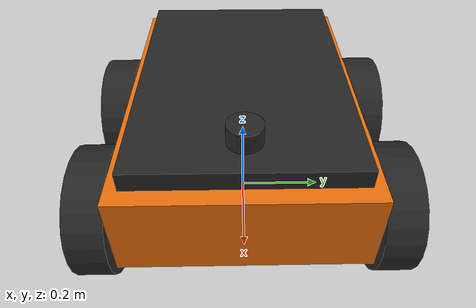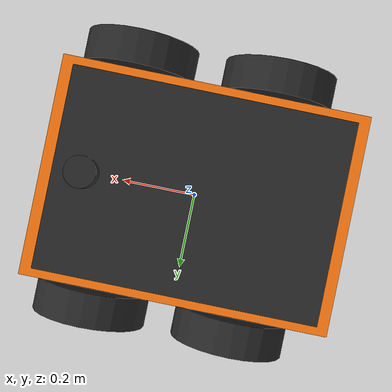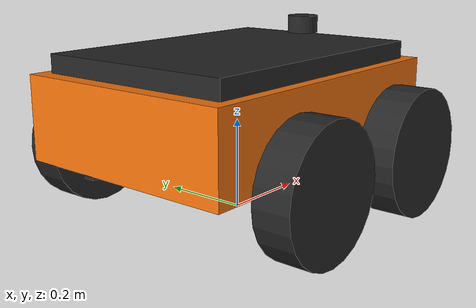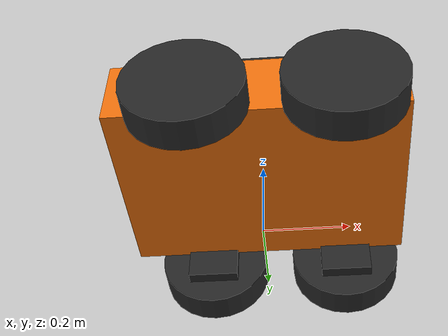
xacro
<?xml version="1.0"?>
<robot name="amr1" xmlns:xacro="http://www.ros.org/wiki/xacro">
  <xacro:include filename="$(find amr_description)/urdf/amr_macro.xacro"/>

  <xacro:arg name="robot_name" default="amr1"/>

  <xacro:amr_robot
    robot_name="$(arg robot_name)"
    robot_type="amr1"
    material_name="amr_orange"
    body_length="0.70" body_width="0.50" body_height="0.18"
    chassis_mass="60.0" payload_capacity_kg="150.0"
    wheel_radius="0.14" wheel_width="0.08"
    wheel_separation="0.62" wheel_base_x="-0.15" idler_base_x="0.20"
    max_linear_vel="0.8" max_linear_accel="0.4" max_angular_accel="1.2"
    lidar_range="25.0"/>
</robot>

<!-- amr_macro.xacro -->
<robot xmlns:xacro="http://www.ros.org/wiki/xacro">
  <xacro:include filename="$(find amr_description)/urdf/common_properties.xacro"/>

  <xacro:macro name="amr_robot" params="
      robot_name
      robot_type
      material_name
      body_length body_width body_height
      chassis_mass payload_capacity_kg
      wheel_radius wheel_width wheel_separation wheel_base_x idler_base_x
      max_linear_vel max_linear_accel max_angular_accel
      lidar_range">

    <xacro:property name="is_amr1" value="${robot_type == 'amr1'}"/>

    <link name="${robot_name}/base_footprint"/>

    <joint name="base_footprint_joint" type="fixed">
      <parent link="${robot_name}/base_footprint"/>
      <child link="${robot_name}/base_link"/>
      <origin xyz="0 0 ${wheel_radius}" rpy="0 0 0"/>
    </joint>

    <link name="${robot_name}/base_link">
      <visual>
        <origin xyz="0 0 ${body_height/2.0}" rpy="0 0 0"/>
        <geometry><box size="${body_length} ${body_width} ${body_height}"/></geometry>
        <material name="${material_name}"/>
      </visual>
      <collision>
        <origin xyz="0 0 ${body_height/2.0}" rpy="0 0 0"/>
        <geometry><box size="${body_length} ${body_width} ${body_height}"/></geometry>
      </collision>
      <inertial>
        <origin xyz="0 0 ${body_height/2.0}" rpy="0 0 0"/>
        <mass value="${chassis_mass}"/>
        <xacro:box_inertia mass="${chassis_mass}" x="${body_length}" y="${body_width}" z="${body_height}"/>
      </inertial>
    </link>

    <!-- Rear axle: driven. Front axle: passive idler, same wheel size -
         together a 4-wheel stance, each wheel proud of the chassis on a
         visible stub arm (see wheel_arm below). -->
    <xacro:drive_wheel prefix="${robot_name}/left" parent_link="${robot_name}/base_link"
      x_off="${wheel_base_x}" y_off="${wheel_separation/2.0}"
      wheel_radius="${wheel_radius}" wheel_width="${wheel_width}" wheel_mass="${chassis_mass*0.03}"
      material_name="amr_dark"/>
    <xacro:drive_wheel prefix="${robot_name}/right" parent_link="${robot_name}/base_link"
      x_off="${wheel_base_x}" y_off="${-wheel_separation/2.0}"
      wheel_radius="${wheel_radius}" wheel_width="${wheel_width}" wheel_mass="${chassis_mass*0.03}"
      material_name="amr_dark"/>
    <xacro:idler_wheel prefix="${robot_name}/front_left" parent_link="${robot_name}/base_link"
      x_off="${idler_base_x}" y_off="${wheel_separation/2.0}"
      wheel_radius="${wheel_radius}" wheel_width="${wheel_width}" wheel_mass="${chassis_mass*0.02}"
      material_name="amr_dark"/>
    <xacro:idler_wheel prefix="${robot_name}/front_right" parent_link="${robot_name}/base_link"
      x_off="${idler_base_x}" y_off="${-wheel_separation/2.0}"
      wheel_radius="${wheel_radius}" wheel_width="${wheel_width}" wheel_mass="${chassis_mass*0.02}"
      material_name="amr_dark"/>

    <xacro:wheel_arm prefix="${robot_name}/rear_left" parent_link="${robot_name}/base_link"
      x_off="${wheel_base_x}" side="1" inner_mag="${body_width/2.0 - 0.01}" outer_mag="${wheel_separation/2.0}" height="${wheel_radius*1.1}" thickness="${wheel_width*1.6}"/>
    <xacro:wheel_arm prefix="${robot_name}/rear_right" parent_link="${robot_name}/base_link"
      x_off="${wheel_base_x}" side="-1" inner_mag="${body_width/2.0 - 0.01}" outer_mag="${wheel_separation/2.0}" height="${wheel_radius*1.1}" thickness="${wheel_width*1.6}"/>
    <xacro:wheel_arm prefix="${robot_name}/front_left" parent_link="${robot_name}/base_link"
      x_off="${idler_base_x}" side="1" inner_mag="${body_width/2.0 - 0.01}" outer_mag="${wheel_separation/2.0}" height="${wheel_radius*1.1}" thickness="${wheel_width*1.6}"/>
    <xacro:wheel_arm prefix="${robot_name}/front_right" parent_link="${robot_name}/base_link"
      x_off="${idler_base_x}" side="-1" inner_mag="${body_width/2.0 - 0.01}" outer_mag="${wheel_separation/2.0}" height="${wheel_radius*1.1}" thickness="${wheel_width*1.6}"/>

    <!-- ===================== Role-specific superstructure ===================== -->
    <xacro:if value="${is_amr1}">
      <!-- Heavy tugger: a flat raised deck the pallet sits directly on
           (matches the reference AGV photo - no forks, no mast) plus a
           small beacon light on top. -->
      <xacro:payload_deck parent_link="${robot_name}/base_link"
        length="${body_length*0.9}" width="${body_width*0.9}" z_off="${body_height + 0.02}"/>
    </xacro:if>

    <xacro:unless value="${is_amr1}">
      <!-- Scout: raked wedge nose up front, rear status LED bar - low and
           quick, nothing raised, nothing carried. -->
      <xacro:wedge_nose parent_link="${robot_name}/base_link"
        x_off="${body_length/2.0 - 0.03}" z_off="${body_height*0.55}"
        length="0.16" width="${body_width*0.85}" height="${body_height*0.7}"
        material_name="${material_name}"/>
      <xacro:led_bar parent_link="${robot_name}/base_link"
        x_off="${-body_length/2.0 + 0.02}" z_off="${body_height + 0.015}" width="${body_width*0.7}"/>
    </xacro:unless>

    <xacro:planar_lidar parent_link="${robot_name}/base_link"
      x_off="${body_length*0.35}" y_off="0.0" z_off="${body_height + 0.03 + is_amr1*0.04}"
      topic="/${robot_name}/scan" frame_id="${robot_name}/lidar_link"
      min_range="0.10" max_range="${lidar_range}"/>

    <xacro:imu_sensor parent_link="${robot_name}/base_link"
      topic="/${robot_name}/imu" frame_id="${robot_name}/imu_link"/>

    <!-- Differential-drive actuation (Ignition Gazebo system plugin) -->
    <gazebo>
      <plugin filename="ignition-gazebo-diff-drive-system" name="ignition::gazebo::systems::DiffDrive">
        <left_joint>${robot_name}/left_wheel_joint</left_joint>
        <right_joint>${robot_name}/right_wheel_joint</right_joint>
        <wheel_separation>${wheel_separation}</wheel_separation>
        <wheel_radius>${wheel_radius}</wheel_radius>
        <max_linear_acceleration>${max_linear_accel}</max_linear_acceleration>
        <min_linear_acceleration>${-max_linear_accel}</min_linear_acceleration>
        <max_angular_acceleration>${max_angular_accel}</max_angular_acceleration>
        <min_angular_acceleration>${-max_angular_accel}</min_angular_acceleration>
        <max_linear_velocity>${max_linear_vel}</max_linear_velocity>
        <min_linear_velocity>${-max_linear_vel}</min_linear_velocity>
        <topic>/${robot_name}/cmd_vel</topic>
        <odom_topic>/${robot_name}/odom</odom_topic>
        <tf_topic>/${robot_name}/tf</tf_topic>
        <frame_id>${robot_name}/odom</frame_id>
        <child_frame_id>${robot_name}/base_footprint</child_frame_id>
        <odom_publish_frequency>50</odom_publish_frequency>
      </plugin>
      <plugin filename="ignition-gazebo-joint-state-publisher-system" name="ignition::gazebo::systems::JointStatePublisher">
        <topic>/${robot_name}/joint_states</topic>
      </plugin>
    </gazebo>

  </xacro:macro>
</robot>

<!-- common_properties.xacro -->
<robot xmlns:xacro="http://www.ros.org/wiki/xacro">

  <material name="amr_orange"><color rgba="0.95 0.45 0.05 1.0"/></material>
  <material name="amr_blue"><color rgba="0.1 0.35 0.85 1.0"/></material>
  <material name="amr_dark"><color rgba="0.15 0.15 0.15 1.0"/></material>
  <material name="amr_grey"><color rgba="0.6 0.6 0.6 1.0"/></material>
  <material name="amr_steel"><color rgba="0.72 0.74 0.76 1.0"/></material>
  <material name="amr_amber"><color rgba="1.0 0.65 0.0 1.0"/></material>
  <material name="amr_cyan"><color rgba="0.1 0.9 0.95 1.0"/></material>

  <xacro:macro name="box_inertia" params="mass x y z">
    <inertia
      ixx="${mass / 12.0 * (y*y + z*z)}" ixy="0.0" ixz="0.0"
      iyy="${mass / 12.0 * (x*x + z*z)}" iyz="0.0"
      izz="${mass / 12.0 * (x*x + y*y)}"/>
  </xacro:macro>

  <xacro:macro name="cylinder_inertia" params="mass r h">
    <inertia
      ixx="${mass / 12.0 * (3*r*r + h*h)}" ixy="0.0" ixz="0.0"
      iyy="${mass / 12.0 * (3*r*r + h*h)}" iyz="0.0"
      izz="${mass / 2.0 * r * r}"/>
  </xacro:macro>

  <!-- Differential-drive wheel: cylinder rolling about its own Y axis -->
  <xacro:macro name="drive_wheel" params="prefix parent_link x_off y_off wheel_radius wheel_width wheel_mass material_name">
    <link name="${prefix}_wheel_link">
      <visual>
        <origin xyz="0 0 0" rpy="1.5708 0 0"/>
        <geometry><cylinder radius="${wheel_radius}" length="${wheel_width}"/></geometry>
        <material name="${material_name}"/>
      </visual>
      <collision>
        <origin xyz="0 0 0" rpy="1.5708 0 0"/>
        <geometry><cylinder radius="${wheel_radius}" length="${wheel_width}"/></geometry>
      </collision>
      <inertial>
        <mass value="${wheel_mass}"/>
        <xacro:cylinder_inertia mass="${wheel_mass}" r="${wheel_radius}" h="${wheel_width}"/>
      </inertial>
    </link>

    <joint name="${prefix}_wheel_joint" type="continuous">
      <parent link="${parent_link}"/>
      <child link="${prefix}_wheel_link"/>
      <origin xyz="${x_off} ${y_off} 0" rpy="0 0 0"/>
      <axis xyz="0 1 0"/>
      <dynamics damping="0.1" friction="0.05"/>
    </joint>
  </xacro:macro>

  <xacro:macro name="idler_wheel" params="prefix parent_link x_off y_off wheel_radius wheel_width wheel_mass material_name">
    <link name="${prefix}_wheel_link">
      <visual>
        <origin xyz="0 0 0" rpy="1.5708 0 0"/>
        <geometry><cylinder radius="${wheel_radius}" length="${wheel_width}"/></geometry>
        <material name="${material_name}"/>
      </visual>
      <collision>
        <origin xyz="0 0 0" rpy="1.5708 0 0"/>
        <geometry><cylinder radius="${wheel_radius}" length="${wheel_width}"/></geometry>
      </collision>
      <inertial>
        <mass value="${wheel_mass}"/>
        <xacro:cylinder_inertia mass="${wheel_mass}" r="${wheel_radius}" h="${wheel_width}"/>
      </inertial>
    </link>
    <joint name="${prefix}_wheel_joint" type="continuous">
      <parent link="${parent_link}"/>
      <child link="${prefix}_wheel_link"/>
      <origin xyz="${x_off} ${y_off} 0" rpy="0 0 0"/>
      <axis xyz="0 1 0"/>
      <dynamics damping="0.05" friction="0.02"/>
    </joint>
    <gazebo reference="${prefix}_wheel_link">
      <mu1>0.05</mu1>
      <mu2>0.05</mu2>
    </gazebo>
  </xacro:macro>

  <xacro:macro name="wheel_arm" params="prefix parent_link x_off side inner_mag outer_mag material_name:=amr_dark thickness:=0.10 height:=0.09">
    <link name="${prefix}_arm_link">
      <visual>
        <origin xyz="0 ${side*(inner_mag+outer_mag)/2.0} 0" rpy="0 0 0"/>
        <geometry><box size="${thickness} ${outer_mag-inner_mag} ${height}"/></geometry>
        <material name="${material_name}"/>
      </visual>
      <inertial>
        <mass value="0.15"/>
        <inertia ixx="1e-4" ixy="0" ixz="0" iyy="1e-4" iyz="0" izz="1e-4"/>
      </inertial>
    </link>
    <joint name="${prefix}_arm_joint" type="fixed">
      <parent link="${parent_link}"/>
      <child link="${prefix}_arm_link"/>
      <origin xyz="${x_off} 0 0" rpy="0 0 0"/>
    </joint>
  </xacro:macro>

  <!-- 2D planar LiDAR, GPU-accelerated, used for local obstacle detection and SLAM -->
  <xacro:macro name="planar_lidar" params="parent_link x_off y_off z_off topic frame_id min_range max_range samples:=720 update_rate:=10">
    <link name="${frame_id}">
      <visual>
        <geometry><cylinder radius="0.035" length="0.04"/></geometry>
        <material name="amr_dark"/>
      </visual>
      <collision>
        <geometry><cylinder radius="0.035" length="0.04"/></geometry>
      </collision>
      <inertial>
        <mass value="0.15"/>
        <inertia ixx="1e-5" ixy="0" ixz="0" iyy="1e-5" iyz="0" izz="1e-5"/>
      </inertial>
    </link>
    <joint name="${frame_id}_joint" type="fixed">
      <parent link="${parent_link}"/>
      <child link="${frame_id}"/>
      <origin xyz="${x_off} ${y_off} ${z_off}" rpy="0 0 0"/>
    </joint>

    <gazebo reference="${frame_id}">
      <sensor name="${frame_id}_sensor" type="gpu_lidar">
        <topic>${topic}</topic>
        <update_rate>${update_rate}</update_rate>
        <always_on>true</always_on>
        <visualize>false</visualize>
        <lidar>
          <scan>
            <horizontal>
              <samples>${samples}</samples>
              <resolution>1</resolution>
              <min_angle>-3.14159</min_angle>
              <max_angle>3.14159</max_angle>
            </horizontal>
          </scan>
          <range>
            <min>${min_range}</min>
            <max>${max_range}</max>
            <resolution>0.01</resolution>
          </range>
        </lidar>
      </sensor>
    </gazebo>
  </xacro:macro>

  <!-- IMU: consumed by the BSP validation routine (angular-velocity plausibility check) -->
  <xacro:macro name="imu_sensor" params="parent_link topic frame_id update_rate:=100">
    <link name="${frame_id}">
      <inertial>
        <mass value="0.05"/>
        <inertia ixx="1e-6" ixy="0" ixz="0" iyy="1e-6" iyz="0" izz="1e-6"/>
      </inertial>
    </link>
    <joint name="${frame_id}_joint" type="fixed">
      <parent link="${parent_link}"/>
      <child link="${frame_id}"/>
      <origin xyz="0 0 0" rpy="0 0 0"/>
    </joint>

    <gazebo reference="${frame_id}">
      <sensor name="${frame_id}_sensor" type="imu">
        <topic>${topic}</topic>
        <update_rate>${update_rate}</update_rate>
        <always_on>true</always_on>
      </sensor>
    </gazebo>
  </xacro:macro>

  <xacro:macro name="beacon_light" params="parent_link x_off y_off z_off material_name:=amr_amber">
    <link name="${parent_link}_beacon_link">
      <visual>
        <geometry><sphere radius="0.045"/></geometry>
        <material name="${material_name}"/>
      </visual>
      <inertial>
        <mass value="0.02"/>
        <inertia ixx="1e-6" ixy="0" ixz="0" iyy="1e-6" iyz="0" izz="1e-6"/>
      </inertial>
    </link>
    <joint name="${parent_link}_beacon_joint" type="fixed">
      <parent link="${parent_link}"/>
      <child link="${parent_link}_beacon_link"/>
      <origin xyz="${x_off} ${y_off} ${z_off}" rpy="0 0 0"/>
    </joint>
  </xacro:macro>

  <!-- Raised payload deck: visual interface where a pallet/cart would sit -->
  <xacro:macro name="payload_deck" params="parent_link length width z_off material_name:=amr_dark">
    <link name="${parent_link}_deck_link">
      <visual>
        <geometry><box size="${length} ${width} 0.04"/></geometry>
        <material name="${material_name}"/>
      </visual>
      <collision>
        <geometry><box size="${length} ${width} 0.04"/></geometry>
      </collision>
      <inertial>
        <mass value="1.0"/>
        <xacro:box_inertia mass="1.0" x="${length}" y="${width}" z="0.04"/>
      </inertial>
    </link>
    <joint name="${parent_link}_deck_joint" type="fixed">
      <parent link="${parent_link}"/>
      <child link="${parent_link}_deck_link"/>
      <origin xyz="0 0 ${z_off}" rpy="0 0 0"/>
    </joint>
  </xacro:macro>

  <!-- Raked wedge nose - the visual signature of the low, fast scout -->
  <xacro:macro name="wedge_nose" params="parent_link x_off z_off length width height material_name">
    <link name="${parent_link}_nose_link">
      <visual>
        <origin xyz="0 0 0" rpy="0 0.45 0"/>
        <geometry><box size="${length} ${width} ${height}"/></geometry>
        <material name="${material_name}"/>
      </visual>
      <collision>
        <origin xyz="0 0 0" rpy="0 0.45 0"/>
        <geometry><box size="${length} ${width} ${height}"/></geometry>
      </collision>
      <inertial>
        <mass value="0.3"/>
        <xacro:box_inertia mass="0.3" x="${length}" y="${width}" z="${height}"/>
      </inertial>
    </link>
    <joint name="${parent_link}_nose_joint" type="fixed">
      <parent link="${parent_link}"/>
      <child link="${parent_link}_nose_link"/>
      <origin xyz="${x_off} 0 ${z_off}" rpy="0 0 0"/>
    </joint>
  </xacro:macro>

  <!-- Thin rear light bar - scout's status-indicator accent -->
  <xacro:macro name="led_bar" params="parent_link x_off z_off width material_name:=amr_cyan">
    <link name="${parent_link}_led_link">
      <visual>
        <geometry><box size="0.03 ${width} 0.02"/></geometry>
        <material name="${material_name}"/>
      </visual>
      <inertial>
        <mass value="0.02"/>
        <inertia ixx="1e-6" ixy="0" ixz="0" iyy="1e-6" iyz="0" izz="1e-6"/>
      </inertial>
    </link>
    <joint name="${parent_link}_led_joint" type="fixed">
      <parent link="${parent_link}"/>
      <child link="${parent_link}_led_link"/>
      <origin xyz="${x_off} 0 ${z_off}" rpy="0 0 0"/>
    </joint>
  </xacro:macro>

</robot>
